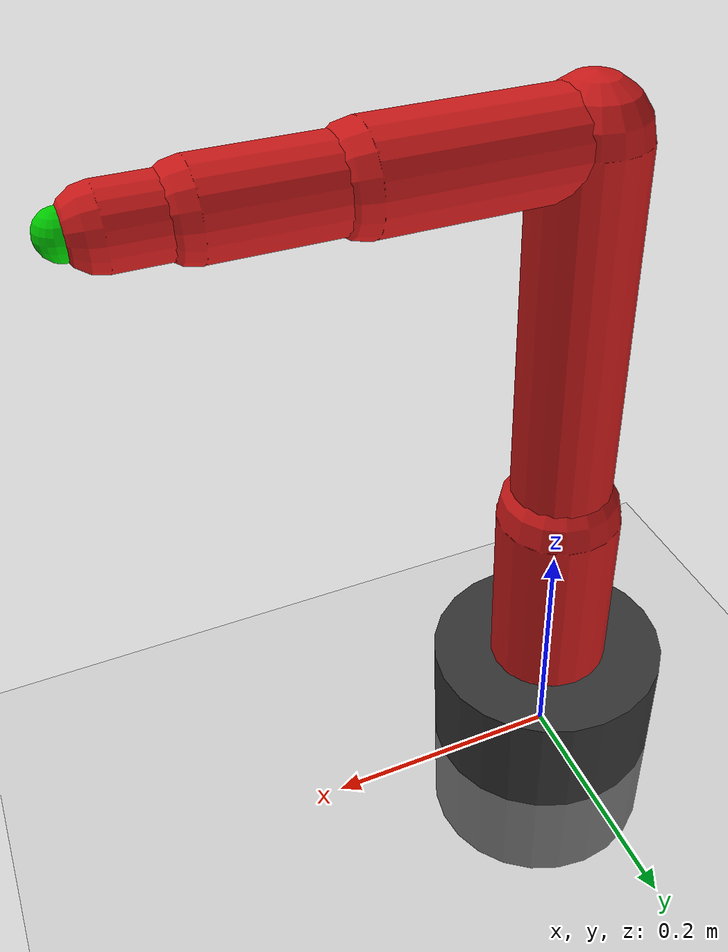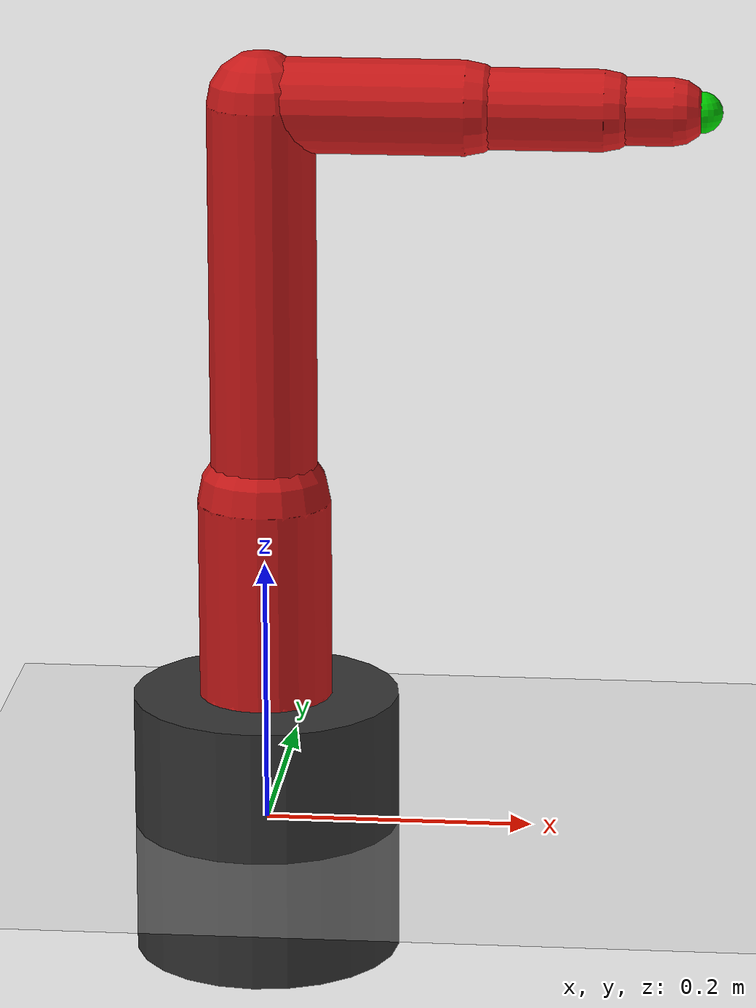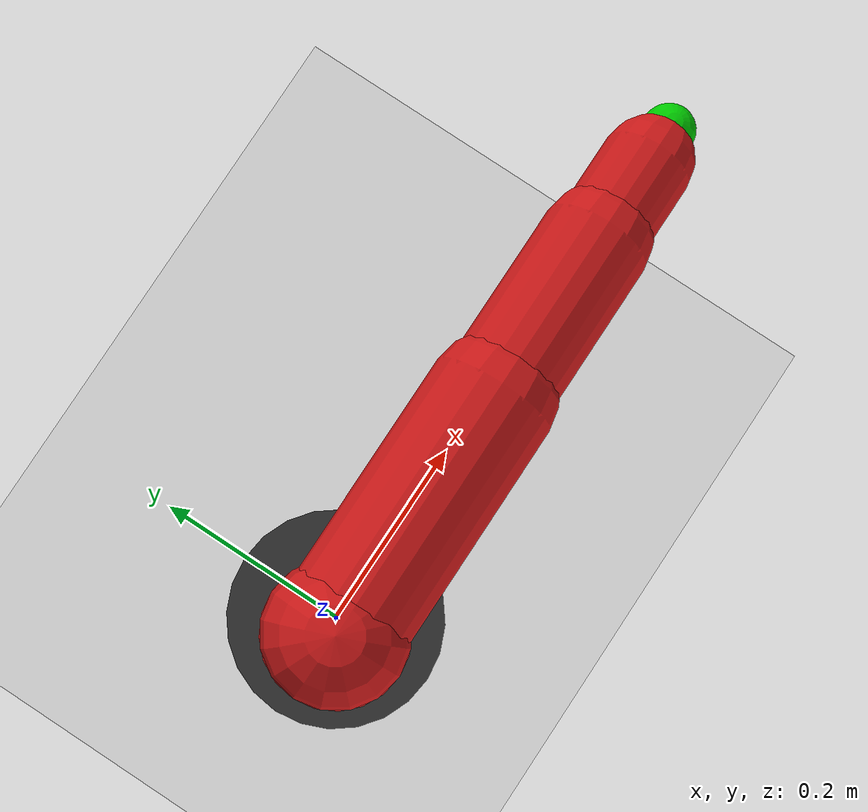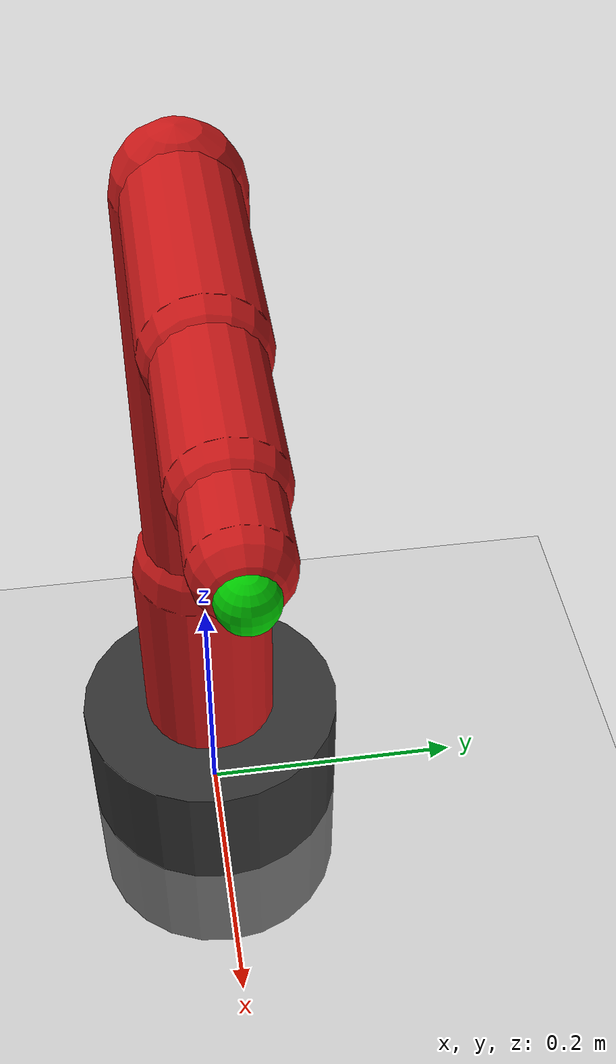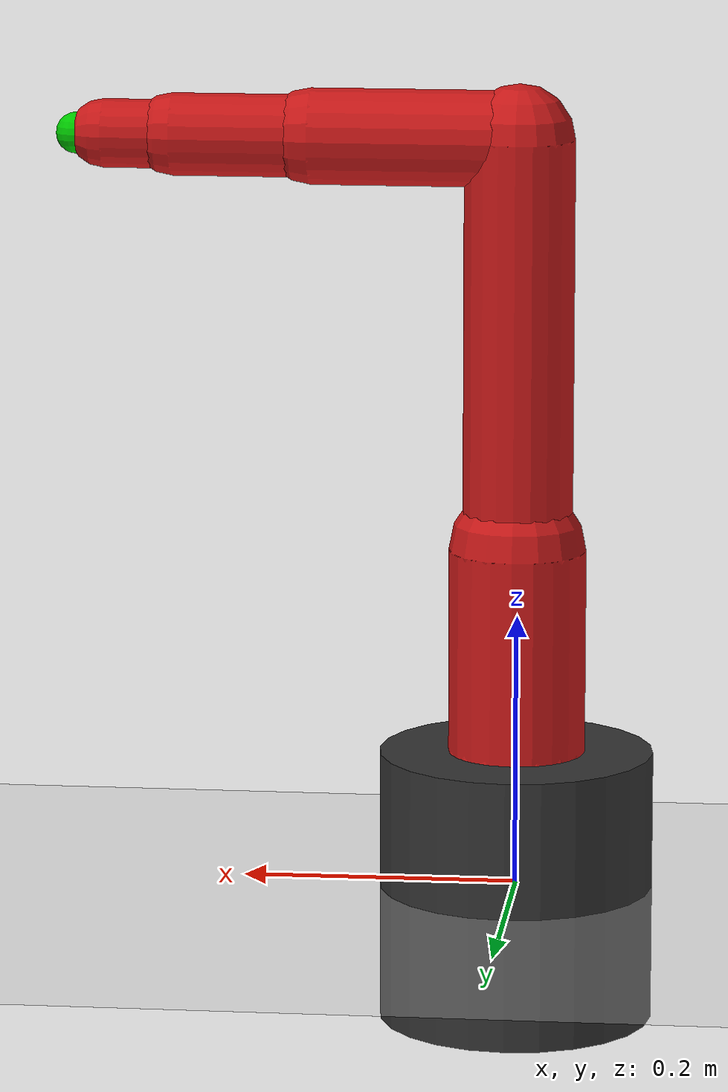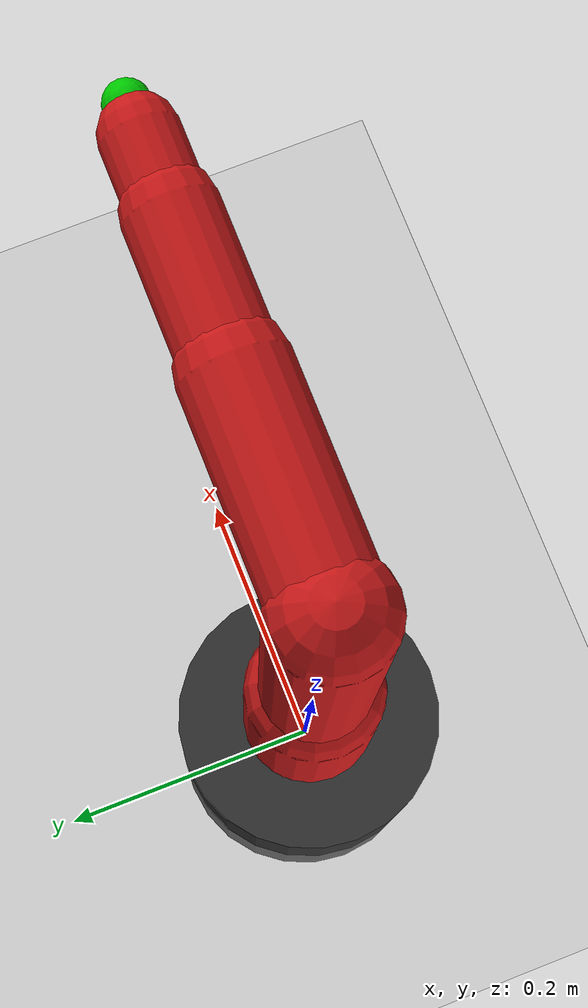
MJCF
<mujoco model="fanuc_mate200id">
  <compiler angle="radian" coordinate="local"/>
  <option gravity="0 0 -9.81" timestep="0.02" integrator="RK4"/>

  <default>
    <joint damping="5.0" armature="0.1" frictionloss="2.5" stiffness="0"/>
    <geom rgba="0.8 0.1 0.1 1"/>
  </default>

  <worldbody>
    <light pos="0 0 2" dir="0 0 -1"/>
    <geom name="floor" type="plane" size="1 1 0.1" rgba="0.8 0.8 0.8 1"/>

    <body name="base_link" pos="0 0 0">
      <geom name="base_geom" type="cylinder" size="0.1 0.1" rgba="0.2 0.2 0.2 1"/>

      <!-- Joint 1: Base Rotation (J1) -->
      <body name="link_1" pos="0 0 0.1">
        <joint name="joint_1" type="hinge" axis="0 0 1" range="-2.96 2.96"/>
        <geom type="capsule" fromto="0 0 0 0 0 0.15" size="0.05"/>

        <!-- Joint 2: Shoulder (J2) -->
        <body name="link_2" pos="0 0 0.15">
          <joint name="joint_2" type="hinge" axis="0 1 0" range="-1.74 2.53"/>
          <geom type="capsule" fromto="0 0 0 0 0 0.3" size="0.04"/>

          <!-- Joint 3: Elbow (J3) -->
          <body name="link_3" pos="0 0 0.3">
            <joint name="joint_3" type="hinge" axis="0 1 0" range="-2.26 3.14"/>
            <geom type="capsule" fromto="0 0 0 0.15 0 0" size="0.035"/>

            <!-- Joint 4: Wrist Roll (J4) -->
            <body name="link_4" pos="0.15 0 0">
              <joint name="joint_4" type="hinge" axis="1 0 0" range="-3.31 3.31"/>
              <geom type="capsule" fromto="0 0 0 0.1 0 0" size="0.03"/>

              <!-- Joint 5: Wrist Pitch (J5) -->
              <body name="link_5" pos="0.1 0 0">
                <joint name="joint_5" type="hinge" axis="0 1 0" range="-2.18 2.18"/>
                <geom type="capsule" fromto="0 0 0 0.05 0 0" size="0.025"/>

                <!-- Joint 6: Wrist Yaw / Flange (J6) -->
                <body name="link_6" pos="0.05 0 0">
                  <joint name="joint_6" type="hinge" axis="1 0 0" range="-6.28 6.28"/>
                  <geom type="cylinder" size="0.02 0.01" rgba="0.3 0.3 0.3 1"/>

                  <!-- End-Effector / Tool Flange Center -->
                  <body name="ee_link" pos="0.02 0 0">
                    <geom name="ee_geom" type="sphere" size="0.015" rgba="0 0.8 0 1"/>
                  </body>
                </body>
              </body>
            </body>
          </body>
        </body>
      </body>
    </body>
  </worldbody>

  <actuator>
    <position name="a1" joint="joint_1" kp="50.0" ctrlrange="-2.96 2.96"/>
    <position name="a2" joint="joint_2" kp="50.0" ctrlrange="-1.74 2.53"/>
    <position name="a3" joint="joint_3" kp="50.0" ctrlrange="-2.26 3.14"/>
    <position name="a4" joint="joint_4" kp="50.0" ctrlrange="-3.31 3.31"/>
    <position name="a5" joint="joint_5" kp="50.0" ctrlrange="-2.18 2.18"/>
    <position name="a6" joint="joint_6" kp="50.0" ctrlrange="-6.28 6.28"/>
  </actuator>
</mujoco>
